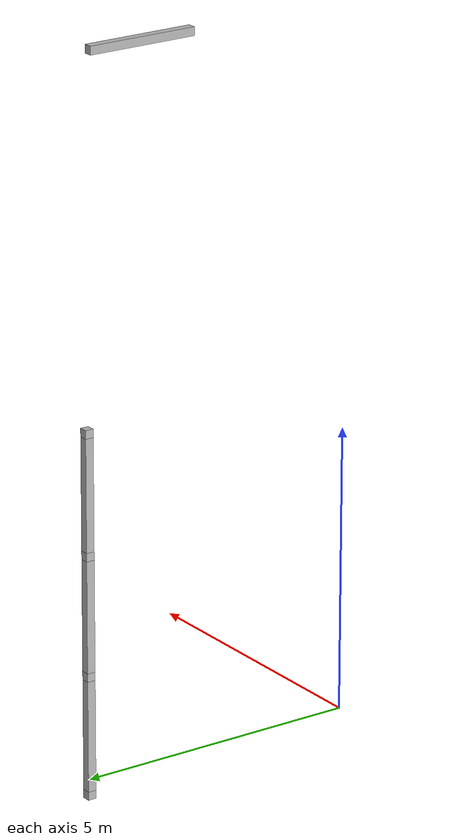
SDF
<sdf version="1.7">
 <world name="default">
  <model name="orthogonal_747_2.000.15_TS">
   <static>1</static>
   <link name="u_link_0_4_4">
    <inertial>
     <mass>1</mass>
     <inertia>
      <ixx>0.166667</ixx>
      <ixy>0</ixy>
      <ixz>0</ixz>
      <iyy>0.166667</iyy>
      <iyz>0</iyz>
      <izz>0.166667</izz>
     </inertia>
    </inertial>
    <pose>8.6 8.6 1.075 0 -0 0</pose>
    <visual name="visual_0">
     <laser_retro>708</laser_retro>
     <geometry><box><size>0.15 1e-06 0.15</size></box></geometry>
     <material>
      <script><name>Gazebo/Grey</name><uri>file://media/materials/scripts/gazebo.material</uri></script>
      <shader type="pixel"><normal_map>__default__</normal_map></shader>
      <ambient>0.678 0.498 0.659 1</ambient>
      <diffuse>0.7 0.7 0.7 1</diffuse>
      <specular>0.01 0.01 0.01 1</specular>
      <emissive>0 0 0 1</emissive>
     </material>
     <pose>0 -0.075 0 0 -0 0</pose>
     <transparency>1</transparency>
    </visual>
    <visual name="visual_1">
     <laser_retro>709</laser_retro>
     <geometry><box><size>0.15 1e-06 0.15</size></box></geometry>
     <material>
      <script><name>Gazebo/Grey</name><uri>file://media/materials/scripts/gazebo.material</uri></script>
      <shader type="pixel"><normal_map>__default__</normal_map></shader>
      <ambient>0.447 0.624 0.812 1</ambient>
      <diffuse>0.7 0.7 0.7 1</diffuse>
      <specular>0.01 0.01 0.01 1</specular>
      <emissive>0 0 0 1</emissive>
     </material>
     <pose>0 0.075 0 0 -0 0</pose>
     <transparency>1</transparency>
    </visual>
    <visual name="visual_2">
     <laser_retro>710</laser_retro>
     <geometry><box><size>0.15 0.15 1e-06</size></box></geometry>
     <material>
      <script><name>Gazebo/Grey</name><uri>file://media/materials/scripts/gazebo.material</uri></script>
      <shader type="pixel"><normal_map>__default__</normal_map></shader>
      <ambient>0.988 0.686 0.243 1</ambient>
      <diffuse>0.7 0.7 0.7 1</diffuse>
      <specular>0.01 0.01 0.01 1</specular>
      <emissive>0 0 0 1</emissive>
     </material>
     <pose>0 0 -0.075 0 -0 0</pose>
     <transparency>1</transparency>
    </visual>
    <visual name="visual_3">
     <laser_retro>711</laser_retro>
     <geometry><box><size>1e-06 0.15 0.15</size></box></geometry>
     <material>
      <script><name>Gazebo/Grey</name><uri>file://media/materials/scripts/gazebo.material</uri></script>
      <shader type="pixel"><normal_map>__default__</normal_map></shader>
      <ambient>0.988 0.914 0.31 1</ambient>
      <diffuse>0.7 0.7 0.7 1</diffuse>
      <specular>0.01 0.01 0.01 1</specular>
      <emissive>0 0 0 1</emissive>
     </material>
     <pose>0.075 0 0 0 -0 0</pose>
     <transparency>1</transparency>
    </visual>
    <visual name="visual_4">
     <laser_retro>712</laser_retro>
     <geometry><box><size>0.15 0.15 1e-06</size></box></geometry>
     <material>
      <script><name>Gazebo/Grey</name><uri>file://media/materials/scripts/gazebo.material</uri></script>
      <shader type="pixel"><normal_map>__default__</normal_map></shader>
      <ambient>0.937 0.161 0.161 1</ambient>
      <diffuse>0.7 0.7 0.7 1</diffuse>
      <specular>0.01 0.01 0.01 1</specular>
      <emissive>0 0 0 1</emissive>
     </material>
     <pose>0 0 0.075 0 -0 0</pose>
     <transparency>1</transparency>
    </visual>
    <visual name="visual_5">
     <laser_retro>713</laser_retro>
     <geometry><box><size>1e-06 0.15 0.15</size></box></geometry>
     <material>
      <script><name>Gazebo/Grey</name><uri>file://media/materials/scripts/gazebo.material</uri></script>
      <shader type="pixel"><normal_map>__default__</normal_map></shader>
      <ambient>0.541 0.886 0.204 1</ambient>
      <diffuse>0.7 0.7 0.7 1</diffuse>
      <specular>0.01 0.01 0.01 1</specular>
      <emissive>0 0 0 1</emissive>
     </material>
     <pose>-0.075 0 0 0 -0 0</pose>
     <transparency>1</transparency>
    </visual>
    <visual name="visual_texture">
     <geometry><box><size>0.149985 0.149985 0.149985</size></box></geometry>
     <material>
      <script>
       <uri>model://BASE_MODELS/simple_block_v2_textured/materials/scripts</uri>
       <uri>model://BASE_MODELS/simple_block_v2_textured/materials/textures</uri>
       <name>metal</name>
      </script>
     </material>
     <laser_retro>714</laser_retro>
    </visual>
    <collision name="collision">
     <geometry><box><size>0.15 0.15 0.15</size></box></geometry>
     <surface>
      <friction>
       <ode><mu>1</mu><mu2>1</mu2><fdir1>0 0 0</fdir1><slip1>0</slip1><slip2>0</slip2></ode>
       <torsional>
        <coefficient>1</coefficient>
        <patch_radius>0</patch_radius>
        <surface_radius>0</surface_radius>
        <use_patch_radius>1</use_patch_radius>
        <ode><slip>0</slip></ode>
       </torsional>
      </friction>
      <bounce><restitution_coefficient>0</restitution_coefficient><threshold>1e+06</threshold></bounce>
      <contact>
       <collide_without_contact>0</collide_without_contact>
       <collide_without_contact_bitmask>1</collide_without_contact_bitmask>
       <collide_bitmask>1</collide_bitmask>
       <ode>
        <soft_cfm>0</soft_cfm>
        <soft_erp>0.2</soft_erp>
        <kp>1e+13</kp>
        <kd>1</kd>
        <max_vel>0.01</max_vel>
        <min_depth>0</min_depth>
       </ode>
       <bullet>
        <split_impulse>1</split_impulse>
        <split_impulse_penetration_threshold>-0.01</split_impulse_penetration_threshold>
        <soft_cfm>0</soft_cfm>
        <soft_erp>0.2</soft_erp>
        <kp>1e+13</kp>
        <kd>1</kd>
       </bullet>
      </contact>
     </surface>
    </collision>
   </link>
   <link name="u_link_1_4_4">
    <inertial>
     <mass>1</mass>
     <inertia>
      <ixx>0.166667</ixx>
      <ixy>0</ixy>
      <ixz>0</ixz>
      <iyy>0.166667</iyy>
      <iyz>0</iyz>
      <izz>0.166667</izz>
     </inertia>
    </inertial>
    <pose>8.6 8.6 3.225 0 -0 0</pose>
    <visual name="visual_0">
     <laser_retro>1583</laser_retro>
     <geometry><box><size>0.15 1e-06 0.15</size></box></geometry>
     <material>
      <script><name>Gazebo/Grey</name><uri>file://media/materials/scripts/gazebo.material</uri></script>
      <shader type="pixel"><normal_map>__default__</normal_map></shader>
      <ambient>0.678 0.498 0.659 1</ambient>
      <diffuse>0.7 0.7 0.7 1</diffuse>
      <specular>0.01 0.01 0.01 1</specular>
      <emissive>0 0 0 1</emissive>
     </material>
     <pose>0 -0.075 0 0 -0 0</pose>
     <transparency>1</transparency>
    </visual>
    <visual name="visual_1">
     <laser_retro>1584</laser_retro>
     <geometry><box><size>0.15 1e-06 0.15</size></box></geometry>
     <material>
      <script><name>Gazebo/Grey</name><uri>file://media/materials/scripts/gazebo.material</uri></script>
      <shader type="pixel"><normal_map>__default__</normal_map></shader>
      <ambient>0.447 0.624 0.812 1</ambient>
      <diffuse>0.7 0.7 0.7 1</diffuse>
      <specular>0.01 0.01 0.01 1</specular>
      <emissive>0 0 0 1</emissive>
     </material>
     <pose>0 0.075 0 0 -0 0</pose>
     <transparency>1</transparency>
    </visual>
    <visual name="visual_2">
     <laser_retro>1585</laser_retro>
     <geometry><box><size>0.15 0.15 1e-06</size></box></geometry>
     <material>
      <script><name>Gazebo/Grey</name><uri>file://media/materials/scripts/gazebo.material</uri></script>
      <shader type="pixel"><normal_map>__default__</normal_map></shader>
      <ambient>0.988 0.686 0.243 1</ambient>
      <diffuse>0.7 0.7 0.7 1</diffuse>
      <specular>0.01 0.01 0.01 1</specular>
      <emissive>0 0 0 1</emissive>
     </material>
     <pose>0 0 -0.075 0 -0 0</pose>
     <transparency>1</transparency>
    </visual>
    <visual name="visual_3">
     <laser_retro>1586</laser_retro>
     <geometry><box><size>1e-06 0.15 0.15</size></box></geometry>
     <material>
      <script><name>Gazebo/Grey</name><uri>file://media/materials/scripts/gazebo.material</uri></script>
      <shader type="pixel"><normal_map>__default__</normal_map></shader>
      <ambient>0.988 0.914 0.31 1</ambient>
      <diffuse>0.7 0.7 0.7 1</diffuse>
      <specular>0.01 0.01 0.01 1</specular>
      <emissive>0 0 0 1</emissive>
     </material>
     <pose>0.075 0 0 0 -0 0</pose>
     <transparency>1</transparency>
    </visual>
    <visual name="visual_4">
     <laser_retro>1587</laser_retro>
     <geometry><box><size>0.15 0.15 1e-06</size></box></geometry>
     <material>
      <script><name>Gazebo/Grey</name><uri>file://media/materials/scripts/gazebo.material</uri></script>
      <shader type="pixel"><normal_map>__default__</normal_map></shader>
      <ambient>0.937 0.161 0.161 1</ambient>
      <diffuse>0.7 0.7 0.7 1</diffuse>
      <specular>0.01 0.01 0.01 1</specular>
      <emissive>0 0 0 1</emissive>
     </material>
     <pose>0 0 0.075 0 -0 0</pose>
     <transparency>1</transparency>
    </visual>
    <visual name="visual_5">
     <laser_retro>1588</laser_retro>
     <geometry><box><size>1e-06 0.15 0.15</size></box></geometry>
     <material>
      <script><name>Gazebo/Grey</name><uri>file://media/materials/scripts/gazebo.material</uri></script>
      <shader type="pixel"><normal_map>__default__</normal_map></shader>
      <ambient>0.541 0.886 0.204 1</ambient>
      <diffuse>0.7 0.7 0.7 1</diffuse>
      <specular>0.01 0.01 0.01 1</specular>
      <emissive>0 0 0 1</emissive>
     </material>
     <pose>-0.075 0 0 0 -0 0</pose>
     <transparency>1</transparency>
    </visual>
    <visual name="visual_texture">
     <geometry><box><size>0.149985 0.149985 0.149985</size></box></geometry>
     <material>
      <script>
       <uri>model://BASE_MODELS/simple_block_v2_textured/materials/scripts</uri>
       <uri>model://BASE_MODELS/simple_block_v2_textured/materials/textures</uri>
       <name>metal</name>
      </script>
     </material>
     <laser_retro>1589</laser_retro>
    </visual>
    <collision name="collision">
     <geometry><box><size>0.15 0.15 0.15</size></box></geometry>
     <surface>
      <friction>
       <ode><mu>1</mu><mu2>1</mu2><fdir1>0 0 0</fdir1><slip1>0</slip1><slip2>0</slip2></ode>
       <torsional>
        <coefficient>1</coefficient>
        <patch_radius>0</patch_radius>
        <surface_radius>0</surface_radius>
        <use_patch_radius>1</use_patch_radius>
        <ode><slip>0</slip></ode>
       </torsional>
      </friction>
      <bounce><restitution_coefficient>0</restitution_coefficient><threshold>1e+06</threshold></bounce>
      <contact>
       <collide_without_contact>0</collide_without_contact>
       <collide_without_contact_bitmask>1</collide_without_contact_bitmask>
       <collide_bitmask>1</collide_bitmask>
       <ode>
        <soft_cfm>0</soft_cfm>
        <soft_erp>0.2</soft_erp>
        <kp>1e+13</kp>
        <kd>1</kd>
        <max_vel>0.01</max_vel>
        <min_depth>0</min_depth>
       </ode>
       <bullet>
        <split_impulse>1</split_impulse>
        <split_impulse_penetration_threshold>-0.01</split_impulse_penetration_threshold>
        <soft_cfm>0</soft_cfm>
        <soft_erp>0.2</soft_erp>
        <kp>1e+13</kp>
        <kd>1</kd>
       </bullet>
      </contact>
     </surface>
    </collision>
   </link>
   <link name="z_link_1_4_4">
    <inertial>
     <mass>1</mass>
     <inertia>
      <ixx>0.166667</ixx>
      <ixy>0</ixy>
      <ixz>0</ixz>
      <iyy>0.166667</iyy>
      <iyz>0</iyz>
      <izz>0.166667</izz>
     </inertia>
    </inertial>
    <pose>8.6 8.6 2.15 0 -0 0</pose>
    <visual name="visual_0">
     <laser_retro>1590</laser_retro>
     <geometry><box><size>0.15 1e-06 2</size></box></geometry>
     <material>
      <script><name>Gazebo/Grey</name><uri>file://media/materials/scripts/gazebo.material</uri></script>
      <shader type="pixel"><normal_map>__default__</normal_map></shader>
      <ambient>0.678 0.498 0.659 1</ambient>
      <diffuse>0.7 0.7 0.7 1</diffuse>
      <specular>0.01 0.01 0.01 1</specular>
      <emissive>0 0 0 1</emissive>
     </material>
     <pose>0 -0.075 0 0 -0 0</pose>
     <transparency>1</transparency>
    </visual>
    <visual name="visual_1">
     <laser_retro>1591</laser_retro>
     <geometry><box><size>0.15 1e-06 2</size></box></geometry>
     <material>
      <script><name>Gazebo/Grey</name><uri>file://media/materials/scripts/gazebo.material</uri></script>
      <shader type="pixel"><normal_map>__default__</normal_map></shader>
      <ambient>0.447 0.624 0.812 1</ambient>
      <diffuse>0.7 0.7 0.7 1</diffuse>
      <specular>0.01 0.01 0.01 1</specular>
      <emissive>0 0 0 1</emissive>
     </material>
     <pose>0 0.075 0 0 -0 0</pose>
     <transparency>1</transparency>
    </visual>
    <visual name="visual_2">
     <laser_retro>1592</laser_retro>
     <geometry><box><size>0.15 0.15 1e-06</size></box></geometry>
     <material>
      <script><name>Gazebo/Grey</name><uri>file://media/materials/scripts/gazebo.material</uri></script>
      <shader type="pixel"><normal_map>__default__</normal_map></shader>
      <ambient>0.988 0.686 0.243 1</ambient>
      <diffuse>0.7 0.7 0.7 1</diffuse>
      <specular>0.01 0.01 0.01 1</specular>
      <emissive>0 0 0 1</emissive>
     </material>
     <pose>0 0 -1 0 -0 0</pose>
     <transparency>1</transparency>
    </visual>
    <visual name="visual_3">
     <laser_retro>1593</laser_retro>
     <geometry><box><size>1e-06 0.15 2</size></box></geometry>
     <material>
      <script><name>Gazebo/Grey</name><uri>file://media/materials/scripts/gazebo.material</uri></script>
      <shader type="pixel"><normal_map>__default__</normal_map></shader>
      <ambient>0.988 0.914 0.31 1</ambient>
      <diffuse>0.7 0.7 0.7 1</diffuse>
      <specular>0.01 0.01 0.01 1</specular>
      <emissive>0 0 0 1</emissive>
     </material>
     <pose>0.075 0 0 0 -0 0</pose>
     <transparency>1</transparency>
    </visual>
    <visual name="visual_4">
     <laser_retro>1594</laser_retro>
     <geometry><box><size>0.15 0.15 1e-06</size></box></geometry>
     <material>
      <script><name>Gazebo/Grey</name><uri>file://media/materials/scripts/gazebo.material</uri></script>
      <shader type="pixel"><normal_map>__default__</normal_map></shader>
      <ambient>0.937 0.161 0.161 1</ambient>
      <diffuse>0.7 0.7 0.7 1</diffuse>
      <specular>0.01 0.01 0.01 1</specular>
      <emissive>0 0 0 1</emissive>
     </material>
     <pose>0 0 1 0 -0 0</pose>
     <transparency>1</transparency>
    </visual>
    <visual name="visual_5">
     <laser_retro>1595</laser_retro>
     <geometry><box><size>1e-06 0.15 2</size></box></geometry>
     <material>
      <script><name>Gazebo/Grey</name><uri>file://media/materials/scripts/gazebo.material</uri></script>
      <shader type="pixel"><normal_map>__default__</normal_map></shader>
      <ambient>0.541 0.886 0.204 1</ambient>
      <diffuse>0.7 0.7 0.7 1</diffuse>
      <specular>0.01 0.01 0.01 1</specular>
      <emissive>0 0 0 1</emissive>
     </material>
     <pose>-0.075 0 0 0 -0 0</pose>
     <transparency>1</transparency>
    </visual>
    <visual name="visual_texture">
     <geometry><box><size>0.149985 0.149985 1.9998</size></box></geometry>
     <material>
      <script>
       <uri>model://BASE_MODELS/simple_block_v2_textured/materials/scripts</uri>
       <uri>model://BASE_MODELS/simple_block_v2_textured/materials/textures</uri>
       <name>metal</name>
      </script>
     </material>
     <laser_retro>1596</laser_retro>
    </visual>
    <collision name="collision">
     <geometry><box><size>0.15 0.15 2</size></box></geometry>
     <surface>
      <friction>
       <ode><mu>1</mu><mu2>1</mu2><fdir1>0 0 0</fdir1><slip1>0</slip1><slip2>0</slip2></ode>
       <torsional>
        <coefficient>1</coefficient>
        <patch_radius>0</patch_radius>
        <surface_radius>0</surface_radius>
        <use_patch_radius>1</use_patch_radius>
        <ode><slip>0</slip></ode>
       </torsional>
      </friction>
      <bounce><restitution_coefficient>0</restitution_coefficient><threshold>1e+06</threshold></bounce>
      <contact>
       <collide_without_contact>0</collide_without_contact>
       <collide_without_contact_bitmask>1</collide_without_contact_bitmask>
       <collide_bitmask>1</collide_bitmask>
       <ode>
        <soft_cfm>0</soft_cfm>
        <soft_erp>0.2</soft_erp>
        <kp>1e+13</kp>
        <kd>1</kd>
        <max_vel>0.01</max_vel>
        <min_depth>0</min_depth>
       </ode>
       <bullet>
        <split_impulse>1</split_impulse>
        <split_impulse_penetration_threshold>-0.01</split_impulse_penetration_threshold>
        <soft_cfm>0</soft_cfm>
        <soft_erp>0.2</soft_erp>
        <kp>1e+13</kp>
        <kd>1</kd>
       </bullet>
      </contact>
     </surface>
    </collision>
   </link>
   <link name="u_link_2_4_4">
    <inertial>
     <mass>1</mass>
     <inertia>
      <ixx>0.166667</ixx>
      <ixy>0</ixy>
      <ixz>0</ixz>
      <iyy>0.166667</iyy>
      <iyz>0</iyz>
      <izz>0.166667</izz>
     </inertia>
    </inertial>
    <pose>8.6 8.6 5.375 0 -0 0</pose>
    <visual name="visual_0">
     <laser_retro>2486</laser_retro>
     <geometry><box><size>0.15 1e-06 0.15</size></box></geometry>
     <material>
      <script><name>Gazebo/Grey</name><uri>file://media/materials/scripts/gazebo.material</uri></script>
      <shader type="pixel"><normal_map>__default__</normal_map></shader>
      <ambient>0.678 0.498 0.659 1</ambient>
      <diffuse>0.7 0.7 0.7 1</diffuse>
      <specular>0.01 0.01 0.01 1</specular>
      <emissive>0 0 0 1</emissive>
     </material>
     <pose>0 -0.075 0 0 -0 0</pose>
     <transparency>1</transparency>
    </visual>
    <visual name="visual_1">
     <laser_retro>2487</laser_retro>
     <geometry><box><size>0.15 1e-06 0.15</size></box></geometry>
     <material>
      <script><name>Gazebo/Grey</name><uri>file://media/materials/scripts/gazebo.material</uri></script>
      <shader type="pixel"><normal_map>__default__</normal_map></shader>
      <ambient>0.447 0.624 0.812 1</ambient>
      <diffuse>0.7 0.7 0.7 1</diffuse>
      <specular>0.01 0.01 0.01 1</specular>
      <emissive>0 0 0 1</emissive>
     </material>
     <pose>0 0.075 0 0 -0 0</pose>
     <transparency>1</transparency>
    </visual>
    <visual name="visual_2">
     <laser_retro>2488</laser_retro>
     <geometry><box><size>0.15 0.15 1e-06</size></box></geometry>
     <material>
      <script><name>Gazebo/Grey</name><uri>file://media/materials/scripts/gazebo.material</uri></script>
      <shader type="pixel"><normal_map>__default__</normal_map></shader>
      <ambient>0.988 0.686 0.243 1</ambient>
      <diffuse>0.7 0.7 0.7 1</diffuse>
      <specular>0.01 0.01 0.01 1</specular>
      <emissive>0 0 0 1</emissive>
     </material>
     <pose>0 0 -0.075 0 -0 0</pose>
     <transparency>1</transparency>
    </visual>
    <visual name="visual_3">
     <laser_retro>2489</laser_retro>
     <geometry><box><size>1e-06 0.15 0.15</size></box></geometry>
     <material>
      <script><name>Gazebo/Grey</name><uri>file://media/materials/scripts/gazebo.material</uri></script>
      <shader type="pixel"><normal_map>__default__</normal_map></shader>
      <ambient>0.988 0.914 0.31 1</ambient>
      <diffuse>0.7 0.7 0.7 1</diffuse>
      <specular>0.01 0.01 0.01 1</specular>
      <emissive>0 0 0 1</emissive>
     </material>
     <pose>0.075 0 0 0 -0 0</pose>
     <transparency>1</transparency>
    </visual>
    <visual name="visual_4">
     <laser_retro>2490</laser_retro>
     <geometry><box><size>0.15 0.15 1e-06</size></box></geometry>
     <material>
      <script><name>Gazebo/Grey</name><uri>file://media/materials/scripts/gazebo.material</uri></script>
      <shader type="pixel"><normal_map>__default__</normal_map></shader>
      <ambient>0.937 0.161 0.161 1</ambient>
      <diffuse>0.7 0.7 0.7 1</diffuse>
      <specular>0.01 0.01 0.01 1</specular>
      <emissive>0 0 0 1</emissive>
     </material>
     <pose>0 0 0.075 0 -0 0</pose>
     <transparency>1</transparency>
    </visual>
    <visual name="visual_5">
     <laser_retro>2491</laser_retro>
     <geometry><box><size>1e-06 0.15 0.15</size></box></geometry>
     <material>
      <script><name>Gazebo/Grey</name><uri>file://media/materials/scripts/gazebo.material</uri></script>
      <shader type="pixel"><normal_map>__default__</normal_map></shader>
      <ambient>0.541 0.886 0.204 1</ambient>
      <diffuse>0.7 0.7 0.7 1</diffuse>
      <specular>0.01 0.01 0.01 1</specular>
      <emissive>0 0 0 1</emissive>
     </material>
     <pose>-0.075 0 0 0 -0 0</pose>
     <transparency>1</transparency>
    </visual>
    <visual name="visual_texture">
     <geometry><box><size>0.149985 0.149985 0.149985</size></box></geometry>
     <material>
      <script>
       <uri>model://BASE_MODELS/simple_block_v2_textured/materials/scripts</uri>
       <uri>model://BASE_MODELS/simple_block_v2_textured/materials/textures</uri>
       <name>metal</name>
      </script>
     </material>
     <laser_retro>2492</laser_retro>
    </visual>
    <collision name="collision">
     <geometry><box><size>0.15 0.15 0.15</size></box></geometry>
     <surface>
      <friction>
       <ode><mu>1</mu><mu2>1</mu2><fdir1>0 0 0</fdir1><slip1>0</slip1><slip2>0</slip2></ode>
       <torsional>
        <coefficient>1</coefficient>
        <patch_radius>0</patch_radius>
        <surface_radius>0</surface_radius>
        <use_patch_radius>1</use_patch_radius>
        <ode><slip>0</slip></ode>
       </torsional>
      </friction>
      <bounce><restitution_coefficient>0</restitution_coefficient><threshold>1e+06</threshold></bounce>
      <contact>
       <collide_without_contact>0</collide_without_contact>
       <collide_without_contact_bitmask>1</collide_without_contact_bitmask>
       <collide_bitmask>1</collide_bitmask>
       <ode>
        <soft_cfm>0</soft_cfm>
        <soft_erp>0.2</soft_erp>
        <kp>1e+13</kp>
        <kd>1</kd>
        <max_vel>0.01</max_vel>
        <min_depth>0</min_depth>
       </ode>
       <bullet>
        <split_impulse>1</split_impulse>
        <split_impulse_penetration_threshold>-0.01</split_impulse_penetration_threshold>
        <soft_cfm>0</soft_cfm>
        <soft_erp>0.2</soft_erp>
        <kp>1e+13</kp>
        <kd>1</kd>
       </bullet>
      </contact>
     </surface>
    </collision>
   </link>
   <link name="z_link_2_4_4">
    <inertial>
     <mass>1</mass>
     <inertia>
      <ixx>0.166667</ixx>
      <ixy>0</ixy>
      <ixz>0</ixz>
      <iyy>0.166667</iyy>
      <iyz>0</iyz>
      <izz>0.166667</izz>
     </inertia>
    </inertial>
    <pose>8.6 8.6 4.3 0 -0 0</pose>
    <visual name="visual_0">
     <laser_retro>2493</laser_retro>
     <geometry><box><size>0.15 1e-06 2</size></box></geometry>
     <material>
      <script><name>Gazebo/Grey</name><uri>file://media/materials/scripts/gazebo.material</uri></script>
      <shader type="pixel"><normal_map>__default__</normal_map></shader>
      <ambient>0.678 0.498 0.659 1</ambient>
      <diffuse>0.7 0.7 0.7 1</diffuse>
      <specular>0.01 0.01 0.01 1</specular>
      <emissive>0 0 0 1</emissive>
     </material>
     <pose>0 -0.075 0 0 -0 0</pose>
     <transparency>1</transparency>
    </visual>
    <visual name="visual_1">
     <laser_retro>2494</laser_retro>
     <geometry><box><size>0.15 1e-06 2</size></box></geometry>
     <material>
      <script><name>Gazebo/Grey</name><uri>file://media/materials/scripts/gazebo.material</uri></script>
      <shader type="pixel"><normal_map>__default__</normal_map></shader>
      <ambient>0.447 0.624 0.812 1</ambient>
      <diffuse>0.7 0.7 0.7 1</diffuse>
      <specular>0.01 0.01 0.01 1</specular>
      <emissive>0 0 0 1</emissive>
     </material>
     <pose>0 0.075 0 0 -0 0</pose>
     <transparency>1</transparency>
    </visual>
    <visual name="visual_2">
     <laser_retro>2495</laser_retro>
     <geometry><box><size>0.15 0.15 1e-06</size></box></geometry>
     <material>
      <script><name>Gazebo/Grey</name><uri>file://media/materials/scripts/gazebo.material</uri></script>
      <shader type="pixel"><normal_map>__default__</normal_map></shader>
      <ambient>0.988 0.686 0.243 1</ambient>
      <diffuse>0.7 0.7 0.7 1</diffuse>
      <specular>0.01 0.01 0.01 1</specular>
      <emissive>0 0 0 1</emissive>
     </material>
     <pose>0 0 -1 0 -0 0</pose>
     <transparency>1</transparency>
    </visual>
    <visual name="visual_3">
     <laser_retro>2496</laser_retro>
     <geometry><box><size>1e-06 0.15 2</size></box></geometry>
     <material>
      <script><name>Gazebo/Grey</name><uri>file://media/materials/scripts/gazebo.material</uri></script>
      <shader type="pixel"><normal_map>__default__</normal_map></shader>
      <ambient>0.988 0.914 0.31 1</ambient>
      <diffuse>0.7 0.7 0.7 1</diffuse>
      <specular>0.01 0.01 0.01 1</specular>
      <emissive>0 0 0 1</emissive>
     </material>
     <pose>0.075 0 0 0 -0 0</pose>
     <transparency>1</transparency>
    </visual>
    <visual name="visual_4">
     <laser_retro>2497</laser_retro>
     <geometry><box><size>0.15 0.15 1e-06</size></box></geometry>
     <material>
      <script><name>Gazebo/Grey</name><uri>file://media/materials/scripts/gazebo.material</uri></script>
      <shader type="pixel"><normal_map>__default__</normal_map></shader>
      <ambient>0.937 0.161 0.161 1</ambient>
      <diffuse>0.7 0.7 0.7 1</diffuse>
      <specular>0.01 0.01 0.01 1</specular>
      <emissive>0 0 0 1</emissive>
     </material>
     <pose>0 0 1 0 -0 0</pose>
     <transparency>1</transparency>
    </visual>
    <visual name="visual_5">
     <laser_retro>2498</laser_retro>
     <geometry><box><size>1e-06 0.15 2</size></box></geometry>
     <material>
      <script><name>Gazebo/Grey</name><uri>file://media/materials/scripts/gazebo.material</uri></script>
      <shader type="pixel"><normal_map>__default__</normal_map></shader>
      <ambient>0.541 0.886 0.204 1</ambient>
      <diffuse>0.7 0.7 0.7 1</diffuse>
      <specular>0.01 0.01 0.01 1</specular>
      <emissive>0 0 0 1</emissive>
     </material>
     <pose>-0.075 0 0 0 -0 0</pose>
     <transparency>1</transparency>
    </visual>
    <visual name="visual_texture">
     <geometry><box><size>0.149985 0.149985 1.9998</size></box></geometry>
     <material>
      <script>
       <uri>model://BASE_MODELS/simple_block_v2_textured/materials/scripts</uri>
       <uri>model://BASE_MODELS/simple_block_v2_textured/materials/textures</uri>
       <name>metal</name>
      </script>
     </material>
     <laser_retro>2499</laser_retro>
    </visual>
    <collision name="collision">
     <geometry><box><size>0.15 0.15 2</size></box></geometry>
     <surface>
      <friction>
       <ode><mu>1</mu><mu2>1</mu2><fdir1>0 0 0</fdir1><slip1>0</slip1><slip2>0</slip2></ode>
       <torsional>
        <coefficient>1</coefficient>
        <patch_radius>0</patch_radius>
        <surface_radius>0</surface_radius>
        <use_patch_radius>1</use_patch_radius>
        <ode><slip>0</slip></ode>
       </torsional>
      </friction>
      <bounce><restitution_coefficient>0</restitution_coefficient><threshold>1e+06</threshold></bounce>
      <contact>
       <collide_without_contact>0</collide_without_contact>
       <collide_without_contact_bitmask>1</collide_without_contact_bitmask>
       <collide_bitmask>1</collide_bitmask>
       <ode>
        <soft_cfm>0</soft_cfm>
        <soft_erp>0.2</soft_erp>
        <kp>1e+13</kp>
        <kd>1</kd>
        <max_vel>0.01</max_vel>
        <min_depth>0</min_depth>
       </ode>
       <bullet>
        <split_impulse>1</split_impulse>
        <split_impulse_penetration_threshold>-0.01</split_impulse_penetration_threshold>
        <soft_cfm>0</soft_cfm>
        <soft_erp>0.2</soft_erp>
        <kp>1e+13</kp>
        <kd>1</kd>
       </bullet>
      </contact>
     </surface>
    </collision>
   </link>
   <link name="u_link_3_4_4">
    <inertial>
     <mass>1</mass>
     <inertia>
      <ixx>0.166667</ixx>
      <ixy>0</ixy>
      <ixz>0</ixz>
      <iyy>0.166667</iyy>
      <iyz>0</iyz>
      <izz>0.166667</izz>
     </inertia>
    </inertial>
    <pose>8.6 8.6 7.525 0 -0 0</pose>
    <visual name="visual_0">
     <laser_retro>3389</laser_retro>
     <geometry><box><size>0.15 1e-06 0.15</size></box></geometry>
     <material>
      <script><name>Gazebo/Grey</name><uri>file://media/materials/scripts/gazebo.material</uri></script>
      <shader type="pixel"><normal_map>__default__</normal_map></shader>
      <ambient>0.678 0.498 0.659 1</ambient>
      <diffuse>0.7 0.7 0.7 1</diffuse>
      <specular>0.01 0.01 0.01 1</specular>
      <emissive>0 0 0 1</emissive>
     </material>
     <pose>0 -0.075 0 0 -0 0</pose>
     <transparency>1</transparency>
    </visual>
    <visual name="visual_1">
     <laser_retro>3390</laser_retro>
     <geometry><box><size>0.15 1e-06 0.15</size></box></geometry>
     <material>
      <script><name>Gazebo/Grey</name><uri>file://media/materials/scripts/gazebo.material</uri></script>
      <shader type="pixel"><normal_map>__default__</normal_map></shader>
      <ambient>0.447 0.624 0.812 1</ambient>
      <diffuse>0.7 0.7 0.7 1</diffuse>
      <specular>0.01 0.01 0.01 1</specular>
      <emissive>0 0 0 1</emissive>
     </material>
     <pose>0 0.075 0 0 -0 0</pose>
     <transparency>1</transparency>
    </visual>
    <visual name="visual_2">
     <laser_retro>3391</laser_retro>
     <geometry><box><size>0.15 0.15 1e-06</size></box></geometry>
     <material>
      <script><name>Gazebo/Grey</name><uri>file://media/materials/scripts/gazebo.material</uri></script>
      <shader type="pixel"><normal_map>__default__</normal_map></shader>
      <ambient>0.988 0.686 0.243 1</ambient>
      <diffuse>0.7 0.7 0.7 1</diffuse>
      <specular>0.01 0.01 0.01 1</specular>
      <emissive>0 0 0 1</emissive>
     </material>
     <pose>0 0 -0.075 0 -0 0</pose>
     <transparency>1</transparency>
    </visual>
    <visual name="visual_3">
     <laser_retro>3392</laser_retro>
     <geometry><box><size>1e-06 0.15 0.15</size></box></geometry>
     <material>
      <script><name>Gazebo/Grey</name><uri>file://media/materials/scripts/gazebo.material</uri></script>
      <shader type="pixel"><normal_map>__default__</normal_map></shader>
      <ambient>0.988 0.914 0.31 1</ambient>
      <diffuse>0.7 0.7 0.7 1</diffuse>
      <specular>0.01 0.01 0.01 1</specular>
      <emissive>0 0 0 1</emissive>
     </material>
     <pose>0.075 0 0 0 -0 0</pose>
     <transparency>1</transparency>
    </visual>
    <visual name="visual_4">
     <laser_retro>3393</laser_retro>
     <geometry><box><size>0.15 0.15 1e-06</size></box></geometry>
     <material>
      <script><name>Gazebo/Grey</name><uri>file://media/materials/scripts/gazebo.material</uri></script>
      <shader type="pixel"><normal_map>__default__</normal_map></shader>
      <ambient>0.937 0.161 0.161 1</ambient>
      <diffuse>0.7 0.7 0.7 1</diffuse>
      <specular>0.01 0.01 0.01 1</specular>
      <emissive>0 0 0 1</emissive>
     </material>
     <pose>0 0 0.075 0 -0 0</pose>
     <transparency>1</transparency>
    </visual>
    <visual name="visual_5">
     <laser_retro>3394</laser_retro>
     <geometry><box><size>1e-06 0.15 0.15</size></box></geometry>
     <material>
      <script><name>Gazebo/Grey</name><uri>file://media/materials/scripts/gazebo.material</uri></script>
      <shader type="pixel"><normal_map>__default__</normal_map></shader>
      <ambient>0.541 0.886 0.204 1</ambient>
      <diffuse>0.7 0.7 0.7 1</diffuse>
      <specular>0.01 0.01 0.01 1</specular>
      <emissive>0 0 0 1</emissive>
     </material>
     <pose>-0.075 0 0 0 -0 0</pose>
     <transparency>1</transparency>
    </visual>
    <visual name="visual_texture">
     <geometry><box><size>0.149985 0.149985 0.149985</size></box></geometry>
     <material>
      <script>
       <uri>model://BASE_MODELS/simple_block_v2_textured/materials/scripts</uri>
       <uri>model://BASE_MODELS/simple_block_v2_textured/materials/textures</uri>
       <name>metal</name>
      </script>
     </material>
     <laser_retro>3395</laser_retro>
    </visual>
    <collision name="collision">
     <geometry><box><size>0.15 0.15 0.15</size></box></geometry>
     <surface>
      <friction>
       <ode><mu>1</mu><mu2>1</mu2><fdir1>0 0 0</fdir1><slip1>0</slip1><slip2>0</slip2></ode>
       <torsional>
        <coefficient>1</coefficient>
        <patch_radius>0</patch_radius>
        <surface_radius>0</surface_radius>
        <use_patch_radius>1</use_patch_radius>
        <ode><slip>0</slip></ode>
       </torsional>
      </friction>
      <bounce><restitution_coefficient>0</restitution_coefficient><threshold>1e+06</threshold></bounce>
      <contact>
       <collide_without_contact>0</collide_without_contact>
       <collide_without_contact_bitmask>1</collide_without_contact_bitmask>
       <collide_bitmask>1</collide_bitmask>
       <ode>
        <soft_cfm>0</soft_cfm>
        <soft_erp>0.2</soft_erp>
        <kp>1e+13</kp>
        <kd>1</kd>
        <max_vel>0.01</max_vel>
        <min_depth>0</min_depth>
       </ode>
       <bullet>
        <split_impulse>1</split_impulse>
        <split_impulse_penetration_threshold>-0.01</split_impulse_penetration_threshold>
        <soft_cfm>0</soft_cfm>
        <soft_erp>0.2</soft_erp>
        <kp>1e+13</kp>
        <kd>1</kd>
       </bullet>
      </contact>
     </surface>
    </collision>
   </link>
   <link name="z_link_3_4_4">
    <inertial>
     <mass>1</mass>
     <inertia>
      <ixx>0.166667</ixx>
      <ixy>0</ixy>
      <ixz>0</ixz>
      <iyy>0.166667</iyy>
      <iyz>0</iyz>
      <izz>0.166667</izz>
     </inertia>
    </inertial>
    <pose>8.6 8.6 6.45 0 -0 0</pose>
    <visual name="visual_0">
     <laser_retro>3396</laser_retro>
     <geometry><box><size>0.15 1e-06 2</size></box></geometry>
     <material>
      <script><name>Gazebo/Grey</name><uri>file://media/materials/scripts/gazebo.material</uri></script>
      <shader type="pixel"><normal_map>__default__</normal_map></shader>
      <ambient>0.678 0.498 0.659 1</ambient>
      <diffuse>0.7 0.7 0.7 1</diffuse>
      <specular>0.01 0.01 0.01 1</specular>
      <emissive>0 0 0 1</emissive>
     </material>
     <pose>0 -0.075 0 0 -0 0</pose>
     <transparency>1</transparency>
    </visual>
    <visual name="visual_1">
     <laser_retro>3397</laser_retro>
     <geometry><box><size>0.15 1e-06 2</size></box></geometry>
     <material>
      <script><name>Gazebo/Grey</name><uri>file://media/materials/scripts/gazebo.material</uri></script>
      <shader type="pixel"><normal_map>__default__</normal_map></shader>
      <ambient>0.447 0.624 0.812 1</ambient>
      <diffuse>0.7 0.7 0.7 1</diffuse>
      <specular>0.01 0.01 0.01 1</specular>
      <emissive>0 0 0 1</emissive>
     </material>
     <pose>0 0.075 0 0 -0 0</pose>
     <transparency>1</transparency>
    </visual>
    <visual name="visual_2">
     <laser_retro>3398</laser_retro>
     <geometry><box><size>0.15 0.15 1e-06</size></box></geometry>
     <material>
      <script><name>Gazebo/Grey</name><uri>file://media/materials/scripts/gazebo.material</uri></script>
      <shader type="pixel"><normal_map>__default__</normal_map></shader>
      <ambient>0.988 0.686 0.243 1</ambient>
      <diffuse>0.7 0.7 0.7 1</diffuse>
      <specular>0.01 0.01 0.01 1</specular>
      <emissive>0 0 0 1</emissive>
     </material>
     <pose>0 0 -1 0 -0 0</pose>
     <transparency>1</transparency>
    </visual>
    <visual name="visual_3">
     <laser_retro>3399</laser_retro>
     <geometry><box><size>1e-06 0.15 2</size></box></geometry>
     <material>
      <script><name>Gazebo/Grey</name><uri>file://media/materials/scripts/gazebo.material</uri></script>
      <shader type="pixel"><normal_map>__default__</normal_map></shader>
      <ambient>0.988 0.914 0.31 1</ambient>
      <diffuse>0.7 0.7 0.7 1</diffuse>
      <specular>0.01 0.01 0.01 1</specular>
      <emissive>0 0 0 1</emissive>
     </material>
     <pose>0.075 0 0 0 -0 0</pose>
     <transparency>1</transparency>
    </visual>
    <visual name="visual_4">
     <laser_retro>3400</laser_retro>
     <geometry><box><size>0.15 0.15 1e-06</size></box></geometry>
     <material>
      <script><name>Gazebo/Grey</name><uri>file://media/materials/scripts/gazebo.material</uri></script>
      <shader type="pixel"><normal_map>__default__</normal_map></shader>
      <ambient>0.937 0.161 0.161 1</ambient>
      <diffuse>0.7 0.7 0.7 1</diffuse>
      <specular>0.01 0.01 0.01 1</specular>
      <emissive>0 0 0 1</emissive>
     </material>
     <pose>0 0 1 0 -0 0</pose>
     <transparency>1</transparency>
    </visual>
    <visual name="visual_5">
     <laser_retro>3401</laser_retro>
     <geometry><box><size>1e-06 0.15 2</size></box></geometry>
     <material>
      <script><name>Gazebo/Grey</name><uri>file://media/materials/scripts/gazebo.material</uri></script>
      <shader type="pixel"><normal_map>__default__</normal_map></shader>
      <ambient>0.541 0.886 0.204 1</ambient>
      <diffuse>0.7 0.7 0.7 1</diffuse>
      <specular>0.01 0.01 0.01 1</specular>
      <emissive>0 0 0 1</emissive>
     </material>
     <pose>-0.075 0 0 0 -0 0</pose>
     <transparency>1</transparency>
    </visual>
    <visual name="visual_texture">
     <geometry><box><size>0.149985 0.149985 1.9998</size></box></geometry>
     <material>
      <script>
       <uri>model://BASE_MODELS/simple_block_v2_textured/materials/scripts</uri>
       <uri>model://BASE_MODELS/simple_block_v2_textured/materials/textures</uri>
       <name>metal</name>
      </script>
     </material>
     <laser_retro>3402</laser_retro>
    </visual>
    <collision name="collision">
     <geometry><box><size>0.15 0.15 2</size></box></geometry>
     <surface>
      <friction>
       <ode><mu>1</mu><mu2>1</mu2><fdir1>0 0 0</fdir1><slip1>0</slip1><slip2>0</slip2></ode>
       <torsional>
        <coefficient>1</coefficient>
        <patch_radius>0</patch_radius>
        <surface_radius>0</surface_radius>
        <use_patch_radius>1</use_patch_radius>
        <ode><slip>0</slip></ode>
       </torsional>
      </friction>
      <bounce><restitution_coefficient>0</restitution_coefficient><threshold>1e+06</threshold></bounce>
      <contact>
       <collide_without_contact>0</collide_without_contact>
       <collide_without_contact_bitmask>1</collide_without_contact_bitmask>
       <collide_bitmask>1</collide_bitmask>
       <ode>
        <soft_cfm>0</soft_cfm>
        <soft_erp>0.2</soft_erp>
        <kp>1e+13</kp>
        <kd>1</kd>
        <max_vel>0.01</max_vel>
        <min_depth>0</min_depth>
       </ode>
       <bullet>
        <split_impulse>1</split_impulse>
        <split_impulse_penetration_threshold>-0.01</split_impulse_penetration_threshold>
        <soft_cfm>0</soft_cfm>
        <soft_erp>0.2</soft_erp>
        <kp>1e+13</kp>
        <kd>1</kd>
       </bullet>
      </contact>
     </surface>
    </collision>
   </link>
   <link name="y_link_6_3_4">
    <inertial>
     <mass>1</mass>
     <inertia>
      <ixx>0.166667</ixx>
      <ixy>0</ixy>
      <ixz>0</ixz>
      <iyy>0.166667</iyy>
      <iyz>0</iyz>
      <izz>0.166667</izz>
     </inertia>
    </inertial>
    <pose>8.6 7.525 13.975 0 -0 0</pose>
    <visual name="visual_0">
     <laser_retro>6035</laser_retro>
     <geometry><box><size>0.15 1e-06 0.15</size></box></geometry>
     <material>
      <script><name>Gazebo/Grey</name><uri>file://media/materials/scripts/gazebo.material</uri></script>
      <shader type="pixel"><normal_map>__default__</normal_map></shader>
      <ambient>0.678 0.498 0.659 1</ambient>
      <diffuse>0.7 0.7 0.7 1</diffuse>
      <specular>0.01 0.01 0.01 1</specular>
      <emissive>0 0 0 1</emissive>
     </material>
     <pose>0 -1 0 0 -0 0</pose>
     <transparency>1</transparency>
    </visual>
    <visual name="visual_1">
     <laser_retro>6036</laser_retro>
     <geometry><box><size>0.15 1e-06 0.15</size></box></geometry>
     <material>
      <script><name>Gazebo/Grey</name><uri>file://media/materials/scripts/gazebo.material</uri></script>
      <shader type="pixel"><normal_map>__default__</normal_map></shader>
      <ambient>0.447 0.624 0.812 1</ambient>
      <diffuse>0.7 0.7 0.7 1</diffuse>
      <specular>0.01 0.01 0.01 1</specular>
      <emissive>0 0 0 1</emissive>
     </material>
     <pose>0 1 0 0 -0 0</pose>
     <transparency>1</transparency>
    </visual>
    <visual name="visual_2">
     <laser_retro>6037</laser_retro>
     <geometry><box><size>0.15 2 1e-06</size></box></geometry>
     <material>
      <script><name>Gazebo/Grey</name><uri>file://media/materials/scripts/gazebo.material</uri></script>
      <shader type="pixel"><normal_map>__default__</normal_map></shader>
      <ambient>0.988 0.686 0.243 1</ambient>
      <diffuse>0.7 0.7 0.7 1</diffuse>
      <specular>0.01 0.01 0.01 1</specular>
      <emissive>0 0 0 1</emissive>
     </material>
     <pose>0 0 -0.075 0 -0 0</pose>
     <transparency>1</transparency>
    </visual>
    <visual name="visual_3">
     <laser_retro>6038</laser_retro>
     <geometry><box><size>1e-06 2 0.15</size></box></geometry>
     <material>
      <script><name>Gazebo/Grey</name><uri>file://media/materials/scripts/gazebo.material</uri></script>
      <shader type="pixel"><normal_map>__default__</normal_map></shader>
      <ambient>0.988 0.914 0.31 1</ambient>
      <diffuse>0.7 0.7 0.7 1</diffuse>
      <specular>0.01 0.01 0.01 1</specular>
      <emissive>0 0 0 1</emissive>
     </material>
     <pose>0.075 0 0 0 -0 0</pose>
     <transparency>1</transparency>
    </visual>
    <visual name="visual_4">
     <laser_retro>6039</laser_retro>
     <geometry><box><size>0.15 2 1e-06</size></box></geometry>
     <material>
      <script><name>Gazebo/Grey</name><uri>file://media/materials/scripts/gazebo.material</uri></script>
      <shader type="pixel"><normal_map>__default__</normal_map></shader>
      <ambient>0.937 0.161 0.161 1</ambient>
      <diffuse>0.7 0.7 0.7 1</diffuse>
      <specular>0.01 0.01 0.01 1</specular>
      <emissive>0 0 0 1</emissive>
     </material>
     <pose>0 0 0.075 0 -0 0</pose>
     <transparency>1</transparency>
    </visual>
    <visual name="visual_5">
     <laser_retro>6040</laser_retro>
     <geometry><box><size>1e-06 2 0.15</size></box></geometry>
     <material>
      <script><name>Gazebo/Grey</name><uri>file://media/materials/scripts/gazebo.material</uri></script>
      <shader type="pixel"><normal_map>__default__</normal_map></shader>
      <ambient>0.541 0.886 0.204 1</ambient>
      <diffuse>0.7 0.7 0.7 1</diffuse>
      <specular>0.01 0.01 0.01 1</specular>
      <emissive>0 0 0 1</emissive>
     </material>
     <pose>-0.075 0 0 0 -0 0</pose>
     <transparency>1</transparency>
    </visual>
    <visual name="visual_texture">
     <geometry><box><size>0.149985 1.9998 0.149985</size></box></geometry>
     <material>
      <script>
       <uri>model://BASE_MODELS/simple_block_v2_textured/materials/scripts</uri>
       <uri>model://BASE_MODELS/simple_block_v2_textured/materials/textures</uri>
       <name>metal</name>
      </script>
     </material>
     <laser_retro>6041</laser_retro>
    </visual>
    <collision name="collision">
     <geometry><box><size>0.15 2 0.15</size></box></geometry>
     <surface>
      <friction>
       <ode><mu>1</mu><mu2>1</mu2><fdir1>0 0 0</fdir1><slip1>0</slip1><slip2>0</slip2></ode>
       <torsional>
        <coefficient>1</coefficient>
        <patch_radius>0</patch_radius>
        <surface_radius>0</surface_radius>
        <use_patch_radius>1</use_patch_radius>
        <ode><slip>0</slip></ode>
       </torsional>
      </friction>
      <bounce><restitution_coefficient>0</restitution_coefficient><threshold>1e+06</threshold></bounce>
      <contact>
       <collide_without_contact>0</collide_without_contact>
       <collide_without_contact_bitmask>1</collide_without_contact_bitmask>
       <collide_bitmask>1</collide_bitmask>
       <ode>
        <soft_cfm>0</soft_cfm>
        <soft_erp>0.2</soft_erp>
        <kp>1e+13</kp>
        <kd>1</kd>
        <max_vel>0.01</max_vel>
        <min_depth>0</min_depth>
       </ode>
       <bullet>
        <split_impulse>1</split_impulse>
        <split_impulse_penetration_threshold>-0.01</split_impulse_penetration_threshold>
        <soft_cfm>0</soft_cfm>
        <soft_erp>0.2</soft_erp>
        <kp>1e+13</kp>
        <kd>1</kd>
       </bullet>
      </contact>
     </surface>
    </collision>
   </link>
   <pose>-6.47624 -5 -2.5 0 -0 0</pose>
  </model>
 </world>
</sdf>
